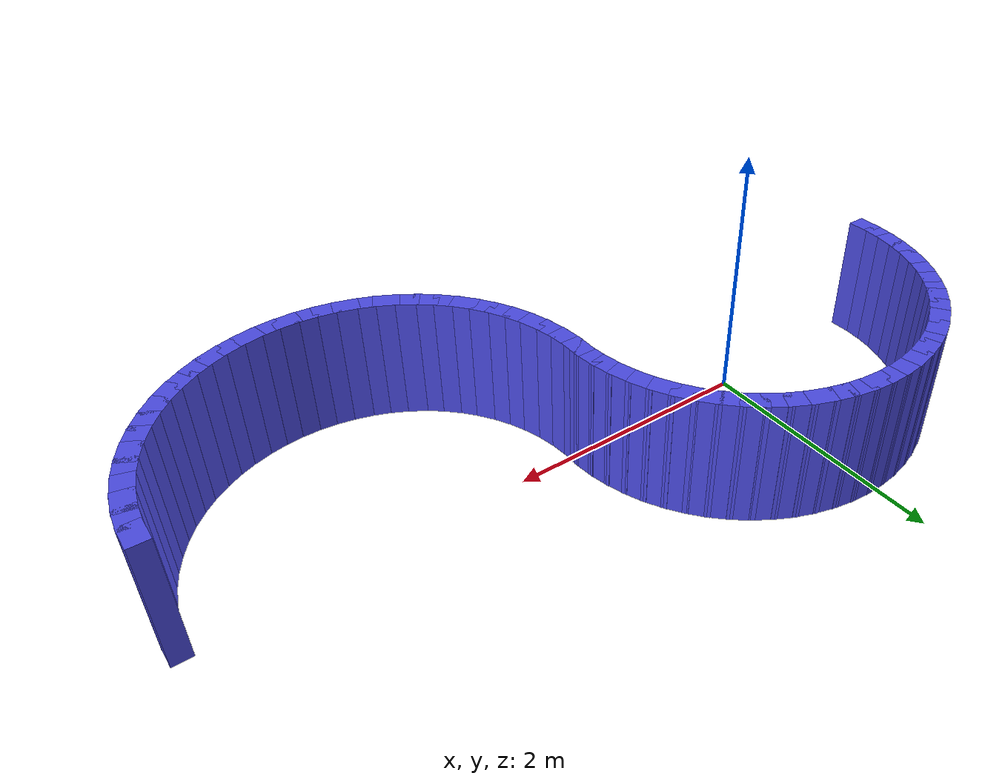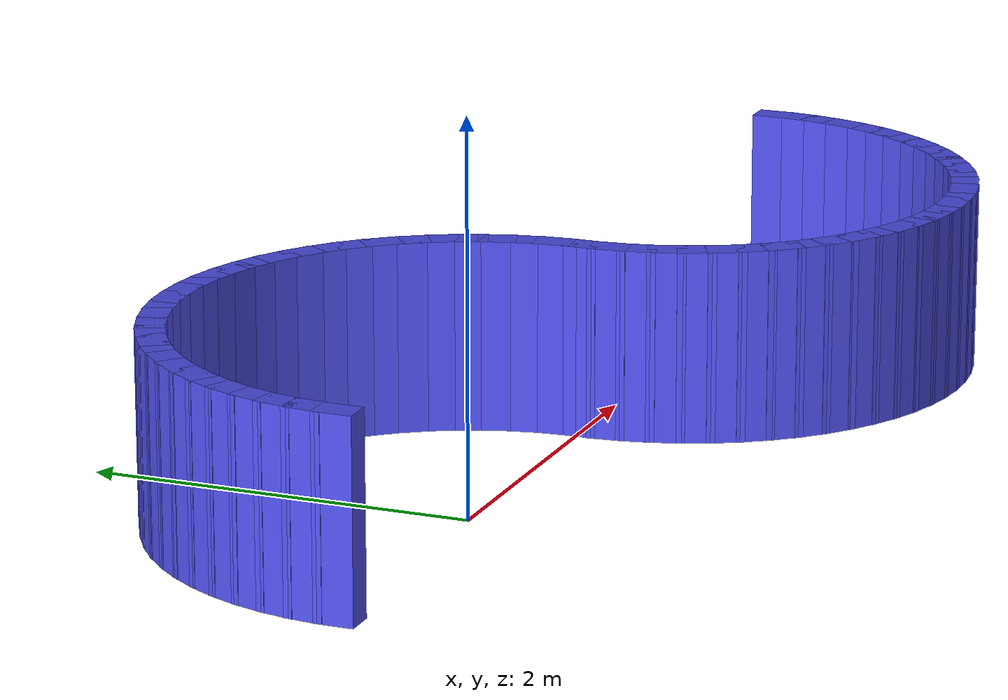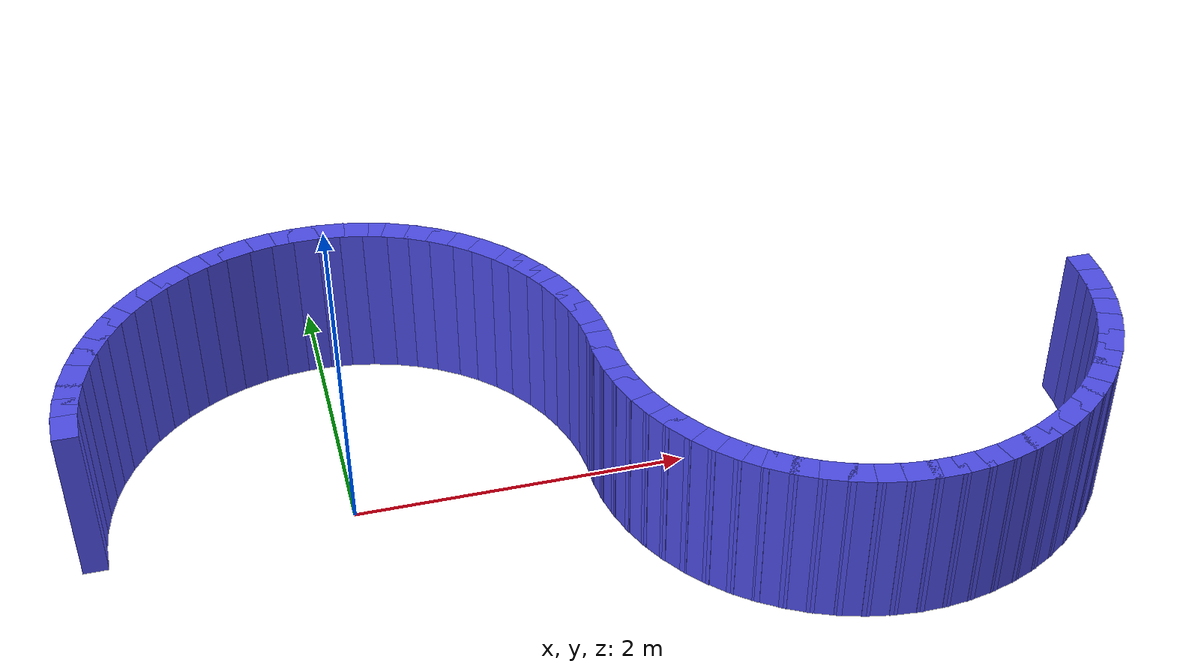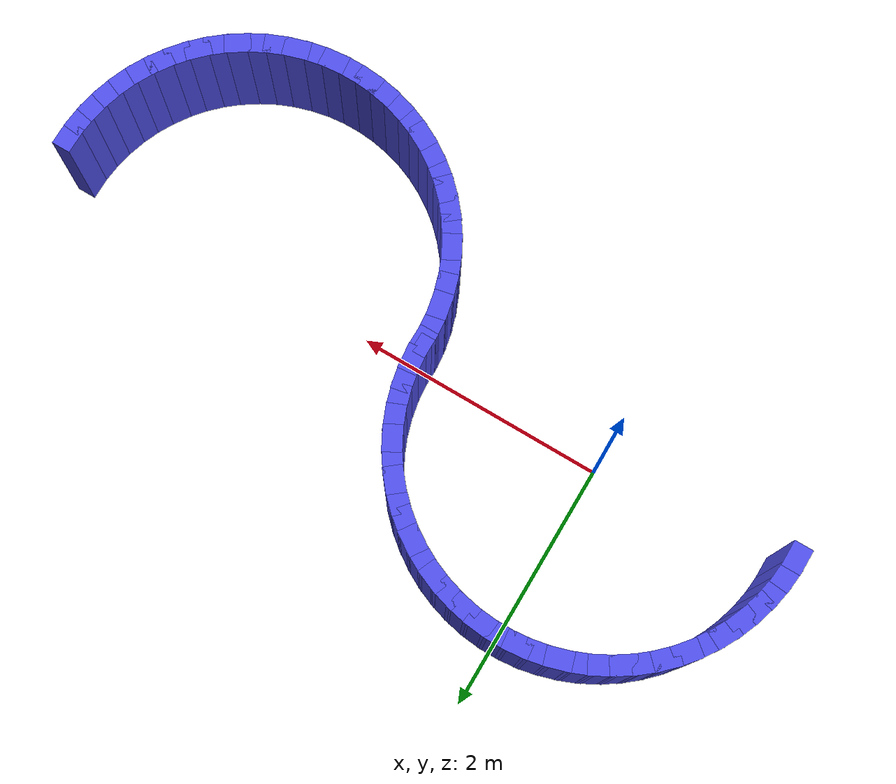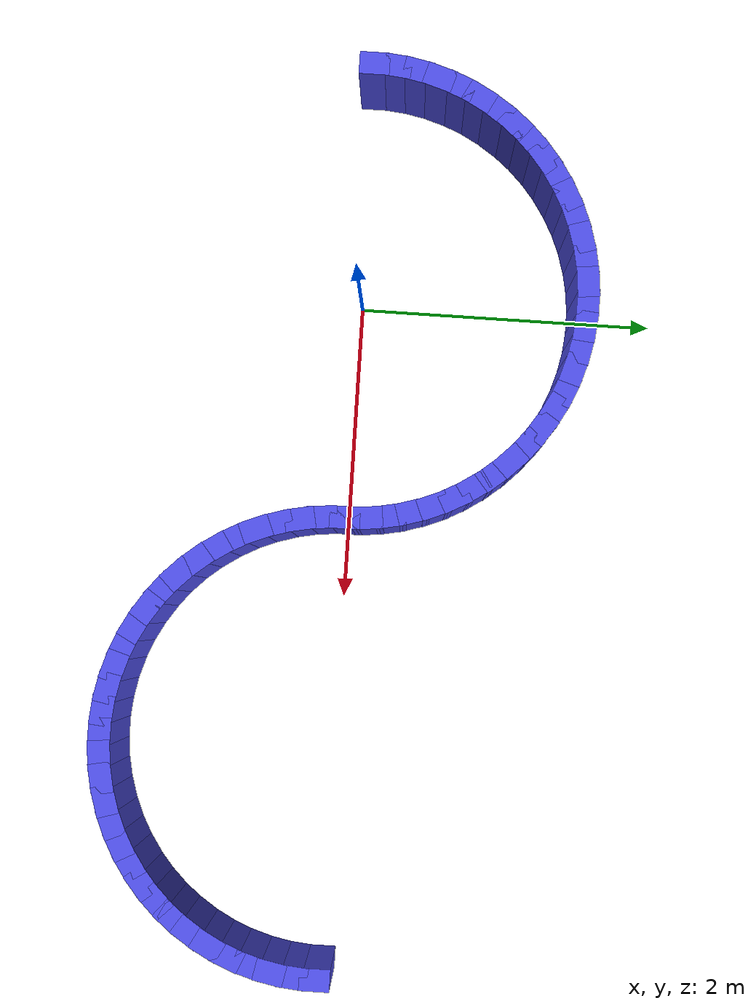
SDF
<?xml version="1.0" ?>
<sdf version="1.6">
  <model name="s_arc_wall">
    <static>true</static>
    <link name="wall_0">
      <pose>-1.500 0.000 0.500 0 0 4.712</pose>
      <collision name="collision">
        <geometry>
          <box><size>0.2 0.147 1.0</size></box>
        </geometry>
      </collision>
      <visual name="visual">
        <geometry>
          <box><size>0.2 0.147 1.0</size></box>
        </geometry>
        <material><ambient>0.3 0.3 0.9 1</ambient></material>
      </visual>
    </link>
    <link name="wall_1">
      <pose>-1.493 0.147 0.500 0 0 4.614</pose>
      <collision name="collision">
        <geometry>
          <box><size>0.2 0.147 1.0</size></box>
        </geometry>
      </collision>
      <visual name="visual">
        <geometry>
          <box><size>0.2 0.147 1.0</size></box>
        </geometry>
        <material><ambient>0.3 0.3 0.9 1</ambient></material>
      </visual>
    </link>
    <link name="wall_2">
      <pose>-1.471 0.293 0.500 0 0 4.516</pose>
      <collision name="collision">
        <geometry>
          <box><size>0.2 0.147 1.0</size></box>
        </geometry>
      </collision>
      <visual name="visual">
        <geometry>
          <box><size>0.2 0.147 1.0</size></box>
        </geometry>
        <material><ambient>0.3 0.3 0.9 1</ambient></material>
      </visual>
    </link>
    <link name="wall_3">
      <pose>-1.435 0.435 0.500 0 0 4.418</pose>
      <collision name="collision">
        <geometry>
          <box><size>0.2 0.147 1.0</size></box>
        </geometry>
      </collision>
      <visual name="visual">
        <geometry>
          <box><size>0.2 0.147 1.0</size></box>
        </geometry>
        <material><ambient>0.3 0.3 0.9 1</ambient></material>
      </visual>
    </link>
    <link name="wall_4">
      <pose>-1.386 0.574 0.500 0 0 4.320</pose>
      <collision name="collision">
        <geometry>
          <box><size>0.2 0.147 1.0</size></box>
        </geometry>
      </collision>
      <visual name="visual">
        <geometry>
          <box><size>0.2 0.147 1.0</size></box>
        </geometry>
        <material><ambient>0.3 0.3 0.9 1</ambient></material>
      </visual>
    </link>
    <link name="wall_5">
      <pose>-1.323 0.707 0.500 0 0 4.222</pose>
      <collision name="collision">
        <geometry>
          <box><size>0.2 0.147 1.0</size></box>
        </geometry>
      </collision>
      <visual name="visual">
        <geometry>
          <box><size>0.2 0.147 1.0</size></box>
        </geometry>
        <material><ambient>0.3 0.3 0.9 1</ambient></material>
      </visual>
    </link>
    <link name="wall_6">
      <pose>-1.247 0.833 0.500 0 0 4.123</pose>
      <collision name="collision">
        <geometry>
          <box><size>0.2 0.147 1.0</size></box>
        </geometry>
      </collision>
      <visual name="visual">
        <geometry>
          <box><size>0.2 0.147 1.0</size></box>
        </geometry>
        <material><ambient>0.3 0.3 0.9 1</ambient></material>
      </visual>
    </link>
    <link name="wall_7">
      <pose>-1.160 0.952 0.500 0 0 4.025</pose>
      <collision name="collision">
        <geometry>
          <box><size>0.2 0.147 1.0</size></box>
        </geometry>
      </collision>
      <visual name="visual">
        <geometry>
          <box><size>0.2 0.147 1.0</size></box>
        </geometry>
        <material><ambient>0.3 0.3 0.9 1</ambient></material>
      </visual>
    </link>
    <link name="wall_8">
      <pose>-1.061 1.061 0.500 0 0 3.927</pose>
      <collision name="collision">
        <geometry>
          <box><size>0.2 0.147 1.0</size></box>
        </geometry>
      </collision>
      <visual name="visual">
        <geometry>
          <box><size>0.2 0.147 1.0</size></box>
        </geometry>
        <material><ambient>0.3 0.3 0.9 1</ambient></material>
      </visual>
    </link>
    <link name="wall_9">
      <pose>-0.952 1.160 0.500 0 0 3.829</pose>
      <collision name="collision">
        <geometry>
          <box><size>0.2 0.147 1.0</size></box>
        </geometry>
      </collision>
      <visual name="visual">
        <geometry>
          <box><size>0.2 0.147 1.0</size></box>
        </geometry>
        <material><ambient>0.3 0.3 0.9 1</ambient></material>
      </visual>
    </link>
    <link name="wall_10">
      <pose>-0.833 1.247 0.500 0 0 3.731</pose>
      <collision name="collision">
        <geometry>
          <box><size>0.2 0.147 1.0</size></box>
        </geometry>
      </collision>
      <visual name="visual">
        <geometry>
          <box><size>0.2 0.147 1.0</size></box>
        </geometry>
        <material><ambient>0.3 0.3 0.9 1</ambient></material>
      </visual>
    </link>
    <link name="wall_11">
      <pose>-0.707 1.323 0.500 0 0 3.632</pose>
      <collision name="collision">
        <geometry>
          <box><size>0.2 0.147 1.0</size></box>
        </geometry>
      </collision>
      <visual name="visual">
        <geometry>
          <box><size>0.2 0.147 1.0</size></box>
        </geometry>
        <material><ambient>0.3 0.3 0.9 1</ambient></material>
      </visual>
    </link>
    <link name="wall_12">
      <pose>-0.574 1.386 0.500 0 0 3.534</pose>
      <collision name="collision">
        <geometry>
          <box><size>0.2 0.147 1.0</size></box>
        </geometry>
      </collision>
      <visual name="visual">
        <geometry>
          <box><size>0.2 0.147 1.0</size></box>
        </geometry>
        <material><ambient>0.3 0.3 0.9 1</ambient></material>
      </visual>
    </link>
    <link name="wall_13">
      <pose>-0.435 1.435 0.500 0 0 3.436</pose>
      <collision name="collision">
        <geometry>
          <box><size>0.2 0.147 1.0</size></box>
        </geometry>
      </collision>
      <visual name="visual">
        <geometry>
          <box><size>0.2 0.147 1.0</size></box>
        </geometry>
        <material><ambient>0.3 0.3 0.9 1</ambient></material>
      </visual>
    </link>
    <link name="wall_14">
      <pose>-0.293 1.471 0.500 0 0 3.338</pose>
      <collision name="collision">
        <geometry>
          <box><size>0.2 0.147 1.0</size></box>
        </geometry>
      </collision>
      <visual name="visual">
        <geometry>
          <box><size>0.2 0.147 1.0</size></box>
        </geometry>
        <material><ambient>0.3 0.3 0.9 1</ambient></material>
      </visual>
    </link>
    <link name="wall_15">
      <pose>-0.147 1.493 0.500 0 0 3.240</pose>
      <collision name="collision">
        <geometry>
          <box><size>0.2 0.147 1.0</size></box>
        </geometry>
      </collision>
      <visual name="visual">
        <geometry>
          <box><size>0.2 0.147 1.0</size></box>
        </geometry>
        <material><ambient>0.3 0.3 0.9 1</ambient></material>
      </visual>
    </link>
    <link name="wall_16">
      <pose>0.000 1.500 0.500 0 0 3.142</pose>
      <collision name="collision">
        <geometry>
          <box><size>0.2 0.147 1.0</size></box>
        </geometry>
      </collision>
      <visual name="visual">
        <geometry>
          <box><size>0.2 0.147 1.0</size></box>
        </geometry>
        <material><ambient>0.3 0.3 0.9 1</ambient></material>
      </visual>
    </link>
    <link name="wall_17">
      <pose>0.147 1.493 0.500 0 0 3.043</pose>
      <collision name="collision">
        <geometry>
          <box><size>0.2 0.147 1.0</size></box>
        </geometry>
      </collision>
      <visual name="visual">
        <geometry>
          <box><size>0.2 0.147 1.0</size></box>
        </geometry>
        <material><ambient>0.3 0.3 0.9 1</ambient></material>
      </visual>
    </link>
    <link name="wall_18">
      <pose>0.293 1.471 0.500 0 0 2.945</pose>
      <collision name="collision">
        <geometry>
          <box><size>0.2 0.147 1.0</size></box>
        </geometry>
      </collision>
      <visual name="visual">
        <geometry>
          <box><size>0.2 0.147 1.0</size></box>
        </geometry>
        <material><ambient>0.3 0.3 0.9 1</ambient></material>
      </visual>
    </link>
    <link name="wall_19">
      <pose>0.435 1.435 0.500 0 0 2.847</pose>
      <collision name="collision">
        <geometry>
          <box><size>0.2 0.147 1.0</size></box>
        </geometry>
      </collision>
      <visual name="visual">
        <geometry>
          <box><size>0.2 0.147 1.0</size></box>
        </geometry>
        <material><ambient>0.3 0.3 0.9 1</ambient></material>
      </visual>
    </link>
    <link name="wall_20">
      <pose>0.574 1.386 0.500 0 0 2.749</pose>
      <collision name="collision">
        <geometry>
          <box><size>0.2 0.147 1.0</size></box>
        </geometry>
      </collision>
      <visual name="visual">
        <geometry>
          <box><size>0.2 0.147 1.0</size></box>
        </geometry>
        <material><ambient>0.3 0.3 0.9 1</ambient></material>
      </visual>
    </link>
    <link name="wall_21">
      <pose>0.707 1.323 0.500 0 0 2.651</pose>
      <collision name="collision">
        <geometry>
          <box><size>0.2 0.147 1.0</size></box>
        </geometry>
      </collision>
      <visual name="visual">
        <geometry>
          <box><size>0.2 0.147 1.0</size></box>
        </geometry>
        <material><ambient>0.3 0.3 0.9 1</ambient></material>
      </visual>
    </link>
    <link name="wall_22">
      <pose>0.833 1.247 0.500 0 0 2.553</pose>
      <collision name="collision">
        <geometry>
          <box><size>0.2 0.147 1.0</size></box>
        </geometry>
      </collision>
      <visual name="visual">
        <geometry>
          <box><size>0.2 0.147 1.0</size></box>
        </geometry>
        <material><ambient>0.3 0.3 0.9 1</ambient></material>
      </visual>
    </link>
    <link name="wall_23">
      <pose>0.952 1.160 0.500 0 0 2.454</pose>
      <collision name="collision">
        <geometry>
          <box><size>0.2 0.147 1.0</size></box>
        </geometry>
      </collision>
      <visual name="visual">
        <geometry>
          <box><size>0.2 0.147 1.0</size></box>
        </geometry>
        <material><ambient>0.3 0.3 0.9 1</ambient></material>
      </visual>
    </link>
    <link name="wall_24">
      <pose>1.061 1.061 0.500 0 0 2.356</pose>
      <collision name="collision">
        <geometry>
          <box><size>0.2 0.147 1.0</size></box>
        </geometry>
      </collision>
      <visual name="visual">
        <geometry>
          <box><size>0.2 0.147 1.0</size></box>
        </geometry>
        <material><ambient>0.3 0.3 0.9 1</ambient></material>
      </visual>
    </link>
    <link name="wall_25">
      <pose>1.160 0.952 0.500 0 0 2.258</pose>
      <collision name="collision">
        <geometry>
          <box><size>0.2 0.147 1.0</size></box>
        </geometry>
      </collision>
      <visual name="visual">
        <geometry>
          <box><size>0.2 0.147 1.0</size></box>
        </geometry>
        <material><ambient>0.3 0.3 0.9 1</ambient></material>
      </visual>
    </link>
    <link name="wall_26">
      <pose>1.247 0.833 0.500 0 0 2.160</pose>
      <collision name="collision">
        <geometry>
          <box><size>0.2 0.147 1.0</size></box>
        </geometry>
      </collision>
      <visual name="visual">
        <geometry>
          <box><size>0.2 0.147 1.0</size></box>
        </geometry>
        <material><ambient>0.3 0.3 0.9 1</ambient></material>
      </visual>
    </link>
    <link name="wall_27">
      <pose>1.323 0.707 0.500 0 0 2.062</pose>
      <collision name="collision">
        <geometry>
          <box><size>0.2 0.147 1.0</size></box>
        </geometry>
      </collision>
      <visual name="visual">
        <geometry>
          <box><size>0.2 0.147 1.0</size></box>
        </geometry>
        <material><ambient>0.3 0.3 0.9 1</ambient></material>
      </visual>
    </link>
    <link name="wall_28">
      <pose>1.386 0.574 0.500 0 0 1.963</pose>
      <collision name="collision">
        <geometry>
          <box><size>0.2 0.147 1.0</size></box>
        </geometry>
      </collision>
      <visual name="visual">
        <geometry>
          <box><size>0.2 0.147 1.0</size></box>
        </geometry>
        <material><ambient>0.3 0.3 0.9 1</ambient></material>
      </visual>
    </link>
    <link name="wall_29">
      <pose>1.435 0.435 0.500 0 0 1.865</pose>
      <collision name="collision">
        <geometry>
          <box><size>0.2 0.147 1.0</size></box>
        </geometry>
      </collision>
      <visual name="visual">
        <geometry>
          <box><size>0.2 0.147 1.0</size></box>
        </geometry>
        <material><ambient>0.3 0.3 0.9 1</ambient></material>
      </visual>
    </link>
    <link name="wall_30">
      <pose>1.471 0.293 0.500 0 0 1.767</pose>
      <collision name="collision">
        <geometry>
          <box><size>0.2 0.147 1.0</size></box>
        </geometry>
      </collision>
      <visual name="visual">
        <geometry>
          <box><size>0.2 0.147 1.0</size></box>
        </geometry>
        <material><ambient>0.3 0.3 0.9 1</ambient></material>
      </visual>
    </link>
    <link name="wall_31">
      <pose>1.493 0.147 0.500 0 0 1.669</pose>
      <collision name="collision">
        <geometry>
          <box><size>0.2 0.147 1.0</size></box>
        </geometry>
      </collision>
      <visual name="visual">
        <geometry>
          <box><size>0.2 0.147 1.0</size></box>
        </geometry>
        <material><ambient>0.3 0.3 0.9 1</ambient></material>
      </visual>
    </link>
    <link name="wall_32">
      <pose>1.500 0.000 0.500 0 0 1.571</pose>
      <collision name="collision">
        <geometry>
          <box><size>0.2 0.147 1.0</size></box>
        </geometry>
      </collision>
      <visual name="visual">
        <geometry>
          <box><size>0.2 0.147 1.0</size></box>
        </geometry>
        <material><ambient>0.3 0.3 0.9 1</ambient></material>
      </visual>
    </link>
    <link name="wall_33">
      <pose>4.500 0.000 0.500 0 0 1.571</pose>
      <collision name="collision">
        <geometry>
          <box><size>0.2 0.147 1.0</size></box>
        </geometry>
      </collision>
      <visual name="visual">
        <geometry>
          <box><size>0.2 0.147 1.0</size></box>
        </geometry>
        <material><ambient>0.3 0.3 0.9 1</ambient></material>
      </visual>
    </link>
    <link name="wall_34">
      <pose>4.493 -0.147 0.500 0 0 1.473</pose>
      <collision name="collision">
        <geometry>
          <box><size>0.2 0.147 1.0</size></box>
        </geometry>
      </collision>
      <visual name="visual">
        <geometry>
          <box><size>0.2 0.147 1.0</size></box>
        </geometry>
        <material><ambient>0.3 0.3 0.9 1</ambient></material>
      </visual>
    </link>
    <link name="wall_35">
      <pose>4.471 -0.293 0.500 0 0 1.374</pose>
      <collision name="collision">
        <geometry>
          <box><size>0.2 0.147 1.0</size></box>
        </geometry>
      </collision>
      <visual name="visual">
        <geometry>
          <box><size>0.2 0.147 1.0</size></box>
        </geometry>
        <material><ambient>0.3 0.3 0.9 1</ambient></material>
      </visual>
    </link>
    <link name="wall_36">
      <pose>4.435 -0.435 0.500 0 0 1.276</pose>
      <collision name="collision">
        <geometry>
          <box><size>0.2 0.147 1.0</size></box>
        </geometry>
      </collision>
      <visual name="visual">
        <geometry>
          <box><size>0.2 0.147 1.0</size></box>
        </geometry>
        <material><ambient>0.3 0.3 0.9 1</ambient></material>
      </visual>
    </link>
    <link name="wall_37">
      <pose>4.386 -0.574 0.500 0 0 1.178</pose>
      <collision name="collision">
        <geometry>
          <box><size>0.2 0.147 1.0</size></box>
        </geometry>
      </collision>
      <visual name="visual">
        <geometry>
          <box><size>0.2 0.147 1.0</size></box>
        </geometry>
        <material><ambient>0.3 0.3 0.9 1</ambient></material>
      </visual>
    </link>
    <link name="wall_38">
      <pose>4.323 -0.707 0.500 0 0 1.080</pose>
      <collision name="collision">
        <geometry>
          <box><size>0.2 0.147 1.0</size></box>
        </geometry>
      </collision>
      <visual name="visual">
        <geometry>
          <box><size>0.2 0.147 1.0</size></box>
        </geometry>
        <material><ambient>0.3 0.3 0.9 1</ambient></material>
      </visual>
    </link>
    <link name="wall_39">
      <pose>4.247 -0.833 0.500 0 0 0.982</pose>
      <collision name="collision">
        <geometry>
          <box><size>0.2 0.147 1.0</size></box>
        </geometry>
      </collision>
      <visual name="visual">
        <geometry>
          <box><size>0.2 0.147 1.0</size></box>
        </geometry>
        <material><ambient>0.3 0.3 0.9 1</ambient></material>
      </visual>
    </link>
    <link name="wall_40">
      <pose>4.160 -0.952 0.500 0 0 0.884</pose>
      <collision name="collision">
        <geometry>
          <box><size>0.2 0.147 1.0</size></box>
        </geometry>
      </collision>
      <visual name="visual">
        <geometry>
          <box><size>0.2 0.147 1.0</size></box>
        </geometry>
        <material><ambient>0.3 0.3 0.9 1</ambient></material>
      </visual>
    </link>
    <link name="wall_41">
      <pose>4.061 -1.061 0.500 0 0 0.785</pose>
      <collision name="collision">
        <geometry>
          <box><size>0.2 0.147 1.0</size></box>
        </geometry>
      </collision>
      <visual name="visual">
        <geometry>
          <box><size>0.2 0.147 1.0</size></box>
        </geometry>
        <material><ambient>0.3 0.3 0.9 1</ambient></material>
      </visual>
    </link>
    <link name="wall_42">
      <pose>3.952 -1.160 0.500 0 0 0.687</pose>
      <collision name="collision">
        <geometry>
          <box><size>0.2 0.147 1.0</size></box>
        </geometry>
      </collision>
      <visual name="visual">
        <geometry>
          <box><size>0.2 0.147 1.0</size></box>
        </geometry>
        <material><ambient>0.3 0.3 0.9 1</ambient></material>
      </visual>
    </link>
    <link name="wall_43">
      <pose>3.833 -1.247 0.500 0 0 0.589</pose>
      <collision name="collision">
        <geometry>
          <box><size>0.2 0.147 1.0</size></box>
        </geometry>
      </collision>
      <visual name="visual">
        <geometry>
          <box><size>0.2 0.147 1.0</size></box>
        </geometry>
        <material><ambient>0.3 0.3 0.9 1</ambient></material>
      </visual>
    </link>
    <link name="wall_44">
      <pose>3.707 -1.323 0.500 0 0 0.491</pose>
      <collision name="collision">
        <geometry>
          <box><size>0.2 0.147 1.0</size></box>
        </geometry>
      </collision>
      <visual name="visual">
        <geometry>
          <box><size>0.2 0.147 1.0</size></box>
        </geometry>
        <material><ambient>0.3 0.3 0.9 1</ambient></material>
      </visual>
    </link>
    <link name="wall_45">
      <pose>3.574 -1.386 0.500 0 0 0.393</pose>
      <collision name="collision">
        <geometry>
          <box><size>0.2 0.147 1.0</size></box>
        </geometry>
      </collision>
      <visual name="visual">
        <geometry>
          <box><size>0.2 0.147 1.0</size></box>
        </geometry>
        <material><ambient>0.3 0.3 0.9 1</ambient></material>
      </visual>
    </link>
    <link name="wall_46">
      <pose>3.435 -1.435 0.500 0 0 0.295</pose>
      <collision name="collision">
        <geometry>
          <box><size>0.2 0.147 1.0</size></box>
        </geometry>
      </collision>
      <visual name="visual">
        <geometry>
          <box><size>0.2 0.147 1.0</size></box>
        </geometry>
        <material><ambient>0.3 0.3 0.9 1</ambient></material>
      </visual>
    </link>
    <link name="wall_47">
      <pose>3.293 -1.471 0.500 0 0 0.196</pose>
      <collision name="collision">
        <geometry>
          <box><size>0.2 0.147 1.0</size></box>
        </geometry>
      </collision>
      <visual name="visual">
        <geometry>
          <box><size>0.2 0.147 1.0</size></box>
        </geometry>
        <material><ambient>0.3 0.3 0.9 1</ambient></material>
      </visual>
    </link>
    <link name="wall_48">
      <pose>3.147 -1.493 0.500 0 0 0.098</pose>
      <collision name="collision">
        <geometry>
          <box><size>0.2 0.147 1.0</size></box>
        </geometry>
      </collision>
      <visual name="visual">
        <geometry>
          <box><size>0.2 0.147 1.0</size></box>
        </geometry>
        <material><ambient>0.3 0.3 0.9 1</ambient></material>
      </visual>
    </link>
    <link name="wall_49">
      <pose>3.000 -1.500 0.500 0 0 0.000</pose>
      <collision name="collision">
        <geometry>
          <box><size>0.2 0.147 1.0</size></box>
        </geometry>
      </collision>
      <visual name="visual">
        <geometry>
          <box><size>0.2 0.147 1.0</size></box>
        </geometry>
        <material><ambient>0.3 0.3 0.9 1</ambient></material>
      </visual>
    </link>
    <link name="wall_50">
      <pose>2.853 -1.493 0.500 0 0 -0.098</pose>
      <collision name="collision">
        <geometry>
          <box><size>0.2 0.147 1.0</size></box>
        </geometry>
      </collision>
      <visual name="visual">
        <geometry>
          <box><size>0.2 0.147 1.0</size></box>
        </geometry>
        <material><ambient>0.3 0.3 0.9 1</ambient></material>
      </visual>
    </link>
    <link name="wall_51">
      <pose>2.707 -1.471 0.500 0 0 -0.196</pose>
      <collision name="collision">
        <geometry>
          <box><size>0.2 0.147 1.0</size></box>
        </geometry>
      </collision>
      <visual name="visual">
        <geometry>
          <box><size>0.2 0.147 1.0</size></box>
        </geometry>
        <material><ambient>0.3 0.3 0.9 1</ambient></material>
      </visual>
    </link>
    <link name="wall_52">
      <pose>2.565 -1.435 0.500 0 0 -0.295</pose>
      <collision name="collision">
        <geometry>
          <box><size>0.2 0.147 1.0</size></box>
        </geometry>
      </collision>
      <visual name="visual">
        <geometry>
          <box><size>0.2 0.147 1.0</size></box>
        </geometry>
        <material><ambient>0.3 0.3 0.9 1</ambient></material>
      </visual>
    </link>
    <link name="wall_53">
      <pose>2.426 -1.386 0.500 0 0 -0.393</pose>
      <collision name="collision">
        <geometry>
          <box><size>0.2 0.147 1.0</size></box>
        </geometry>
      </collision>
      <visual name="visual">
        <geometry>
          <box><size>0.2 0.147 1.0</size></box>
        </geometry>
        <material><ambient>0.3 0.3 0.9 1</ambient></material>
      </visual>
    </link>
    <link name="wall_54">
      <pose>2.293 -1.323 0.500 0 0 -0.491</pose>
      <collision name="collision">
        <geometry>
          <box><size>0.2 0.147 1.0</size></box>
        </geometry>
      </collision>
      <visual name="visual">
        <geometry>
          <box><size>0.2 0.147 1.0</size></box>
        </geometry>
        <material><ambient>0.3 0.3 0.9 1</ambient></material>
      </visual>
    </link>
    <link name="wall_55">
      <pose>2.167 -1.247 0.500 0 0 -0.589</pose>
      <collision name="collision">
        <geometry>
          <box><size>0.2 0.147 1.0</size></box>
        </geometry>
      </collision>
      <visual name="visual">
        <geometry>
          <box><size>0.2 0.147 1.0</size></box>
        </geometry>
        <material><ambient>0.3 0.3 0.9 1</ambient></material>
      </visual>
    </link>
    <link name="wall_56">
      <pose>2.048 -1.160 0.500 0 0 -0.687</pose>
      <collision name="collision">
        <geometry>
          <box><size>0.2 0.147 1.0</size></box>
        </geometry>
      </collision>
      <visual name="visual">
        <geometry>
          <box><size>0.2 0.147 1.0</size></box>
        </geometry>
        <material><ambient>0.3 0.3 0.9 1</ambient></material>
      </visual>
    </link>
    <link name="wall_57">
      <pose>1.939 -1.061 0.500 0 0 -0.785</pose>
      <collision name="collision">
        <geometry>
          <box><size>0.2 0.147 1.0</size></box>
        </geometry>
      </collision>
      <visual name="visual">
        <geometry>
          <box><size>0.2 0.147 1.0</size></box>
        </geometry>
        <material><ambient>0.3 0.3 0.9 1</ambient></material>
      </visual>
    </link>
    <link name="wall_58">
      <pose>1.840 -0.952 0.500 0 0 -0.884</pose>
      <collision name="collision">
        <geometry>
          <box><size>0.2 0.147 1.0</size></box>
        </geometry>
      </collision>
      <visual name="visual">
        <geometry>
          <box><size>0.2 0.147 1.0</size></box>
        </geometry>
        <material><ambient>0.3 0.3 0.9 1</ambient></material>
      </visual>
    </link>
    <link name="wall_59">
      <pose>1.753 -0.833 0.500 0 0 -0.982</pose>
      <collision name="collision">
        <geometry>
          <box><size>0.2 0.147 1.0</size></box>
        </geometry>
      </collision>
      <visual name="visual">
        <geometry>
          <box><size>0.2 0.147 1.0</size></box>
        </geometry>
        <material><ambient>0.3 0.3 0.9 1</ambient></material>
      </visual>
    </link>
    <link name="wall_60">
      <pose>1.677 -0.707 0.500 0 0 -1.080</pose>
      <collision name="collision">
        <geometry>
          <box><size>0.2 0.147 1.0</size></box>
        </geometry>
      </collision>
      <visual name="visual">
        <geometry>
          <box><size>0.2 0.147 1.0</size></box>
        </geometry>
        <material><ambient>0.3 0.3 0.9 1</ambient></material>
      </visual>
    </link>
    <link name="wall_61">
      <pose>1.614 -0.574 0.500 0 0 -1.178</pose>
      <collision name="collision">
        <geometry>
          <box><size>0.2 0.147 1.0</size></box>
        </geometry>
      </collision>
      <visual name="visual">
        <geometry>
          <box><size>0.2 0.147 1.0</size></box>
        </geometry>
        <material><ambient>0.3 0.3 0.9 1</ambient></material>
      </visual>
    </link>
    <link name="wall_62">
      <pose>1.565 -0.435 0.500 0 0 -1.276</pose>
      <collision name="collision">
        <geometry>
          <box><size>0.2 0.147 1.0</size></box>
        </geometry>
      </collision>
      <visual name="visual">
        <geometry>
          <box><size>0.2 0.147 1.0</size></box>
        </geometry>
        <material><ambient>0.3 0.3 0.9 1</ambient></material>
      </visual>
    </link>
    <link name="wall_63">
      <pose>1.529 -0.293 0.500 0 0 -1.374</pose>
      <collision name="collision">
        <geometry>
          <box><size>0.2 0.147 1.0</size></box>
        </geometry>
      </collision>
      <visual name="visual">
        <geometry>
          <box><size>0.2 0.147 1.0</size></box>
        </geometry>
        <material><ambient>0.3 0.3 0.9 1</ambient></material>
      </visual>
    </link>
    <link name="wall_64">
      <pose>1.507 -0.147 0.500 0 0 -1.473</pose>
      <collision name="collision">
        <geometry>
          <box><size>0.2 0.147 1.0</size></box>
        </geometry>
      </collision>
      <visual name="visual">
        <geometry>
          <box><size>0.2 0.147 1.0</size></box>
        </geometry>
        <material><ambient>0.3 0.3 0.9 1</ambient></material>
      </visual>
    </link>
    <link name="wall_65">
      <pose>1.500 -0.000 0.500 0 0 -1.571</pose>
      <collision name="collision">
        <geometry>
          <box><size>0.2 0.147 1.0</size></box>
        </geometry>
      </collision>
      <visual name="visual">
        <geometry>
          <box><size>0.2 0.147 1.0</size></box>
        </geometry>
        <material><ambient>0.3 0.3 0.9 1</ambient></material>
      </visual>
    </link>
  </model>
</sdf>
